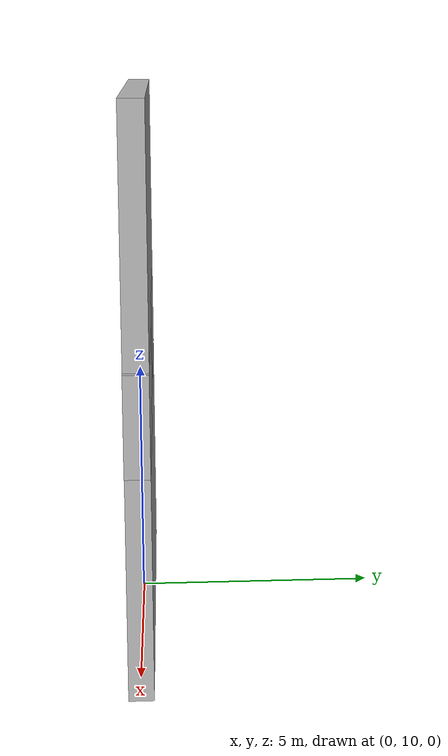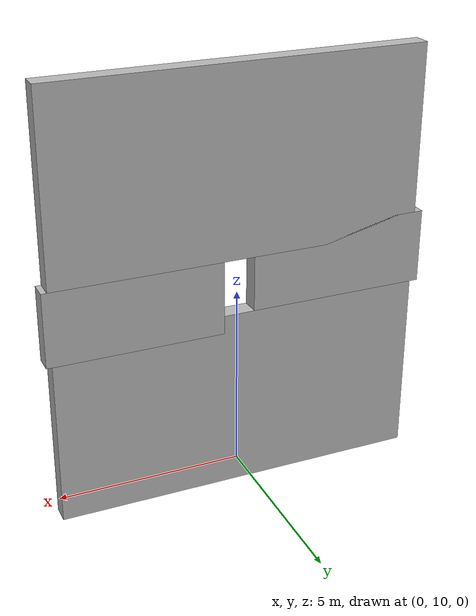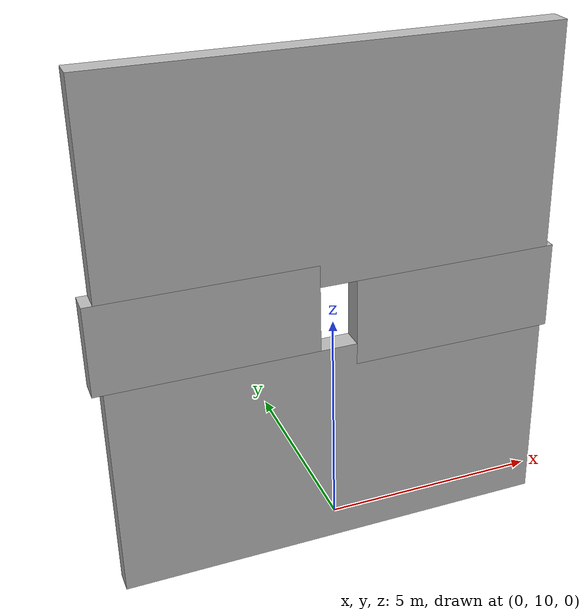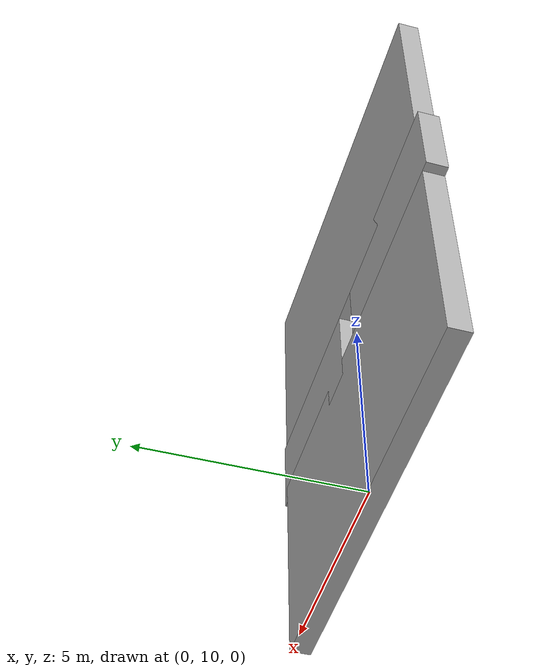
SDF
<?xml version='1.0'?>
<sdf version="1.4">
  <model name="folding_drone_obstacle1">
    <!-- Current propeller size 140 mm wide - becomes drone width -->
    <!-- normal drone size a 442 mm wide -->

    <static>true</static>
    <link name="link">
      <pose>0 10 2.0 0 0 0</pose>
      <inertial>
        <mass>1.0</mass>
        <inertia> <!-- inertias are tricky to compute -->
          <!-- http://gazebosim.org/tutorials?tut=inertia&cat=build_robot -->
          <ixx>0.083</ixx>       <!-- for a box: ixx = 0.083 * mass * (y*y + z*z) -->
          <ixy>0.0</ixy>         <!-- for a box: ixy = 0 -->
          <ixz>0.0</ixz>         <!-- for a box: ixz = 0 -->
          <iyy>0.083</iyy>       <!-- for a box: iyy = 0.083 * mass * (x*x + z*z) -->
          <iyz>0.0</iyz>         <!-- for a box: iyz = 0 -->
          <izz>0.083</izz>       <!-- for a box: izz = 0.083 * mass * (x*x + y*y) -->
        </inertia>
      </inertial>
      <collision name="collision">
        <geometry>
          <box>
            <size>10 0.5 5</size>
          </box>
        </geometry>
      </collision>
      <visual name="visual">
        <geometry>
          <box>
            <size>10 0.5 5</size>
          </box>
        </geometry>
      </visual>
    </link>
    <link name="link1">
      <pose>2.8 10 5 0 0 0</pose>
      <inertial>
        <mass>1.0</mass>
        <inertia> <!-- inertias are tricky to compute -->
          <!-- http://gazebosim.org/tutorials?tut=inertia&cat=build_robot -->
          <ixx>0.083</ixx>       <!-- for a box: ixx = 0.083 * mass * (y*y + z*z) -->
          <ixy>0.0</ixy>         <!-- for a box: ixy = 0 -->
          <ixz>0.0</ixz>         <!-- for a box: ixz = 0 -->
          <iyy>0.083</iyy>       <!-- for a box: iyy = 0.083 * mass * (x*x + z*z) -->
          <iyz>0.0</iyz>         <!-- for a box: iyz = 0 -->
          <izz>0.083</izz>       <!-- for a box: izz = 0.083 * mass * (x*x + y*y) -->
        </inertia>
      </inertial>
      <collision name="collision1">
        <geometry>
          <box>
            <size>4.7 0.5 2</size>
          </box>
        </geometry>
      </collision>
      <visual name="visual1">
        <geometry>
          <box>
            <size>4.7 0.5 2</size>
          </box>
        </geometry>
      </visual>
    </link>
    <link name="link2">
      <pose>-2.8 10 5.5 0 0 0</pose>
      <inertial>
        <mass>1.0</mass>
        <inertia> <!-- inertias are tricky to compute -->
          <!-- http://gazebosim.org/tutorials?tut=inertia&cat=build_robot -->
          <ixx>0.083</ixx>       <!-- for a box: ixx = 0.083 * mass * (y*y + z*z) -->
          <ixy>0.0</ixy>         <!-- for a box: ixy = 0 -->
          <ixz>0.0</ixz>         <!-- for a box: ixz = 0 -->
          <iyy>0.083</iyy>       <!-- for a box: iyy = 0.083 * mass * (x*x + z*z) -->
          <iyz>0.0</iyz>         <!-- for a box: iyz = 0 -->
          <izz>0.083</izz>       <!-- for a box: izz = 0.083 * mass * (x*x + y*y) -->
        </inertia>
      </inertial>
      <collision name="collision2">
        <geometry>
          <box>
            <size>4.85 0.5 2</size>
          </box>
        </geometry>
      </collision>
      <visual name="visual2">
        <geometry>
          <box>
            <size>4.85 0.5 2</size>
          </box>
        </geometry>
      </visual>
    </link>
    <link name="link3">
      <pose>0 10 8.5 0 0 0</pose>
      <inertial>
        <mass>1.0</mass>
        <inertia> <!-- inertias are tricky to compute -->
          <!-- http://gazebosim.org/tutorials?tut=inertia&cat=build_robot -->
          <ixx>0.083</ixx>       <!-- for a box: ixx = 0.083 * mass * (y*y + z*z) -->
          <ixy>0.0</ixy>         <!-- for a box: ixy = 0 -->
          <ixz>0.0</ixz>         <!-- for a box: ixz = 0 -->
          <iyy>0.083</iyy>       <!-- for a box: iyy = 0.083 * mass * (x*x + z*z) -->
          <iyz>0.0</iyz>         <!-- for a box: iyz = 0 -->
          <izz>0.083</izz>       <!-- for a box: izz = 0.083 * mass * (x*x + y*y) -->
        </inertia>
      </inertial>
      <collision name="collision3">
        <geometry>
          <box>
            <size>10 0.5 5</size>
          </box>
        </geometry>
      </collision>
      <visual name="visual3">
        <geometry>
          <box>
            <size>10 0.5 5</size>
          </box>
        </geometry>
      </visual>
    </link>
  </model>
</sdf>
